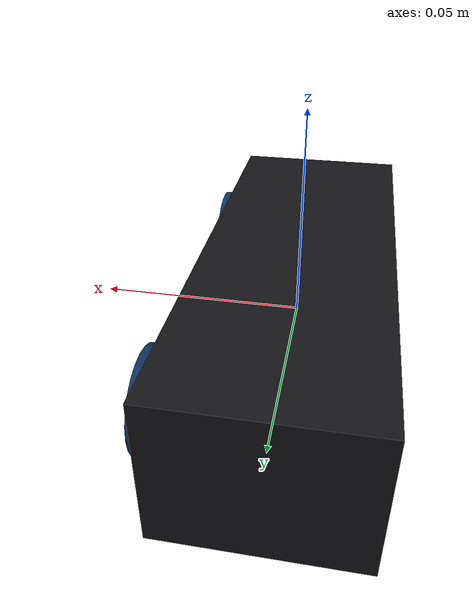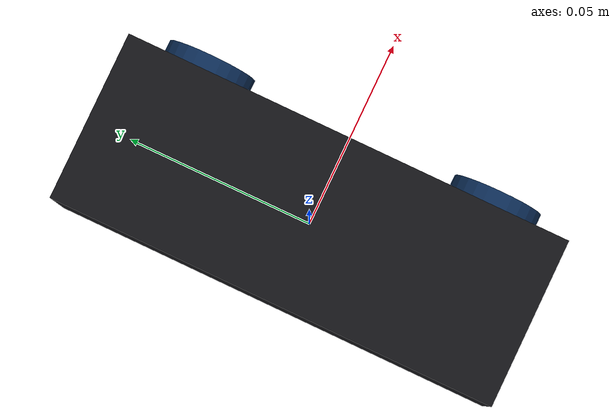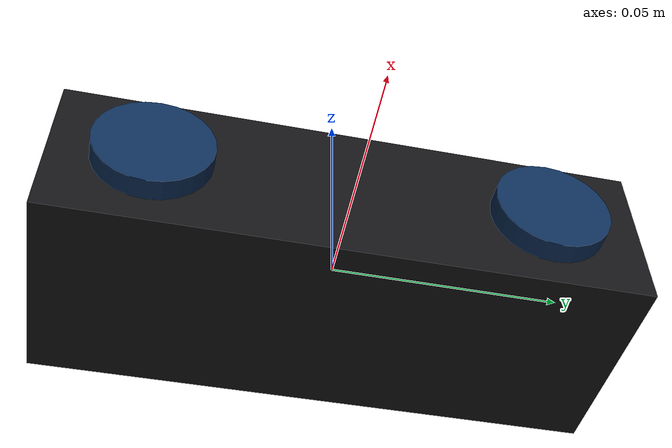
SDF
<?xml version="1.0"?>
<sdf version="1.6">
  <model name="fire_stereo_camera">
    <static>false</static>
    <link name="link">
      <inertial>
        <mass>0.0001</mass>
        <inertia>
          <ixx>0.000000001</ixx><iyy>0.000000001</iyy><izz>0.000000001</izz>
        </inertia>
      </inertial>
      <visual name="housing">
        <geometry><box><size>0.045 0.12 0.035</size></box></geometry>
        <material>
          <ambient>0.08 0.08 0.09 1</ambient>
          <diffuse>0.08 0.08 0.09 1</diffuse>
        </material>
      </visual>
      <visual name="left_lens">
        <pose>0.024 0.04 0 0 1.5707963 0</pose>
        <geometry><cylinder><radius>0.012</radius><length>0.006</length></cylinder></geometry>
        <material><ambient>0.05 0.18 0.35 1</ambient><diffuse>0.05 0.18 0.35 1</diffuse></material>
      </visual>
      <visual name="right_lens">
        <pose>0.024 -0.04 0 0 1.5707963 0</pose>
        <geometry><cylinder><radius>0.012</radius><length>0.006</length></cylinder></geometry>
        <material><ambient>0.05 0.18 0.35 1</ambient><diffuse>0.05 0.18 0.35 1</diffuse></material>
      </visual>
      <sensor name="forward_stereo_depth" type="depth">
        <always_on>true</always_on>
        <update_rate>15</update_rate>
        <visualize>false</visualize>
        <camera>
          <horizontal_fov>1.40</horizontal_fov>
          <image>
            <width>320</width><height>180</height><format>R8G8B8</format>
          </image>
          <clip><near>0.20</near><far>4.00</far></clip>
        </camera>
        <plugin name="fire_stereo_depth_plugin"
                filename="libgazebo_ros_depth_camera.so">
          <baseline>0.08</baseline>
          <alwaysOn>true</alwaysOn>
          <updateRate>15.0</updateRate>
          <cameraName>fire_stereo</cameraName>
          <imageTopicName>/fire_stereo/rgb/image_raw</imageTopicName>
          <cameraInfoTopicName>/fire_stereo/rgb/camera_info</cameraInfoTopicName>
          <depthImageTopicName>/fire_stereo/depth/image_raw</depthImageTopicName>
          <depthImageCameraInfoTopicName>/fire_stereo/depth/camera_info</depthImageCameraInfoTopicName>
          <pointCloudTopicName>/fire_stereo/points</pointCloudTopicName>
          <frameName>fire_stereo_optical_frame</frameName>
          <pointCloudCutoff>0.20</pointCloudCutoff>
          <pointCloudCutoffMax>4.00</pointCloudCutoffMax>
          <distortionK1>0.0</distortionK1>
          <distortionK2>0.0</distortionK2>
          <distortionK3>0.0</distortionK3>
          <distortionT1>0.0</distortionT1>
          <distortionT2>0.0</distortionT2>
        </plugin>
      </sensor>
    </link>
  </model>
</sdf>
